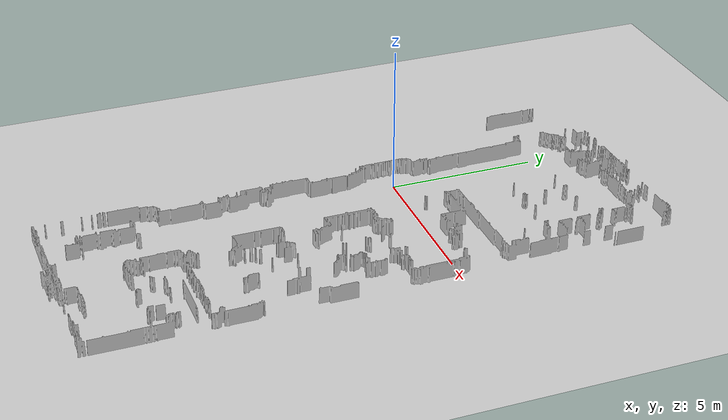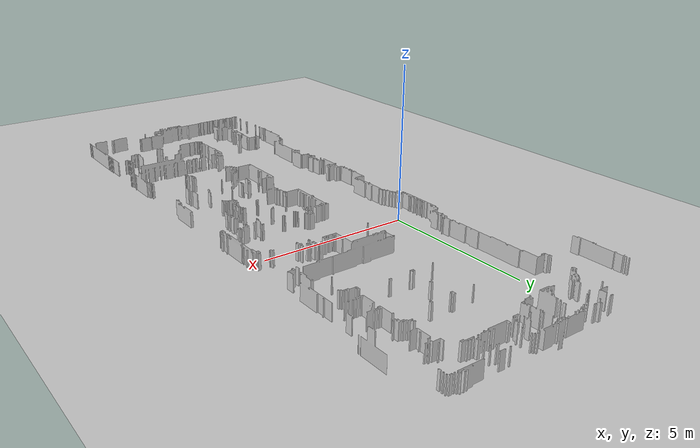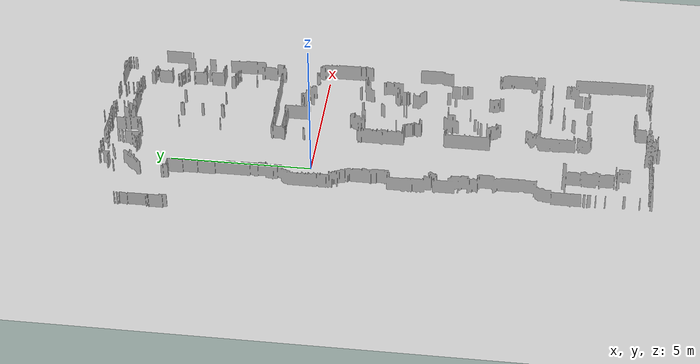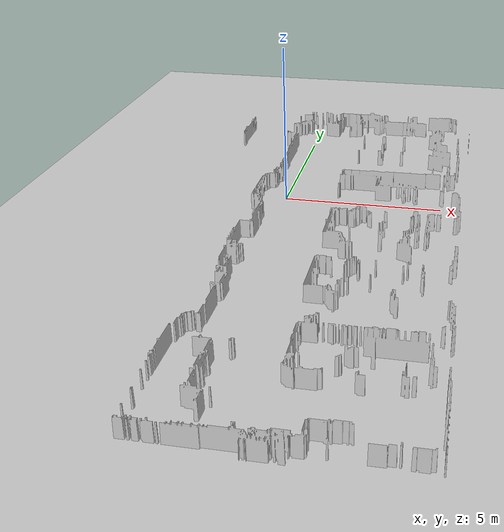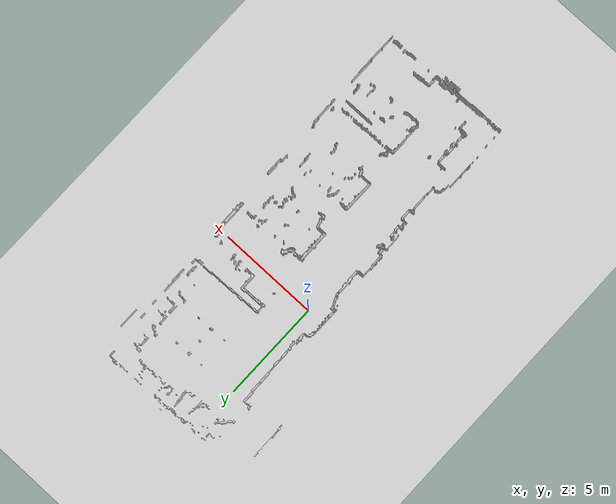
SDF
<?xml version="1.0"?>
<sdf version="1.11">
  <world name="office_v2">

    <physics name="2ms" type="Bullet">
      <max_step_size>0.002</max_step_size>
      <real_time_factor>2.0</real_time_factor>
      <real_time_update_rate>500</real_time_update_rate>
    </physics>

    <!-- Plugins-->
    <plugin filename="gz-sim-physics-system" name="gz::sim::systems::Physics"></plugin>
    <plugin filename="gz-sim-user-commands-system" name="gz::sim::systems::UserCommands"></plugin>
    <plugin filename="gz-sim-scene-broadcaster-system" name="gz::sim::systems::SceneBroadcaster"></plugin>
    <plugin filename="gz-sim-contact-system" name="gz::sim::systems::Contact"></plugin>

    <!-- Sensor Plugins-->
    <plugin filename="gz-sim-imu-system" name="gz::sim::systems::Imu"></plugin>
    <plugin filename="gz-sim-sensors-system" name="gz::sim::systems::Sensors">
      <render_engine>ogre2</render_engine>
    </plugin>

    <!-- Our office environment, created from office_v2.pgm -->
    <include>
      <uri>model://office_v2</uri>
      <pose>1.5 -2.2 0 0 0 0</pose>
    </include>

    <model name="ground_plane">
      <static>true</static>
        <link name="link">
            <collision name="collision">
                <geometry>
                    <plane>
                        <normal>0 0 1</normal>
                    </plane>
                </geometry>
            </collision>
            <visual name="visual">
                <geometry>
                    <plane>
                        <normal>0 0 1</normal>
                        <size>8 20</size>
                    </plane>
                </geometry>
                <material>
                    <ambient>0.8 0.8 0.8 1</ambient>
                    <diffuse>0.8 0.8 0.8 1</diffuse>
                    <specular>0.8 0.8 0.8 1</specular>
                </material>
            </visual>
        </link>
    </model>

    <!-- Lighting -->
    <light type="directional" name="sun">
      <cast_shadows>true</cast_shadows>
      <pose>0 0 10 0 0 0</pose>
      <diffuse>0.8 0.8 0.8 1</diffuse>
      <specular>0.2 0.2 0.2 1</specular>
      <attenuation>
          <range>1000</range>
          <constant>0.9</constant>
          <linear>0.01</linear>
          <quadratic>0.001</quadratic>
      </attenuation>
      <direction>-0.5 0.1 -0.9</direction>
    </light>
  </world>
</sdf>

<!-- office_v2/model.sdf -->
<sdf version="1.9">
  <model name="office_v2">
    <link name="link">

      <collision name="collision">
        <geometry>
          <mesh>
            <uri>meshes/office_v2.stl</uri>
            <scale>1 1 0.25</scale>
          </mesh>
        </geometry>
        <surface>
          <friction>
            <ode>
              <mu>0.5</mu>
              <mu2>0.5</mu2>
              <fdir1>0 0 0</fdir1>
              <slip1>0</slip1>
              <slip2>0</slip2>
            </ode>
          </friction>
        </surface>
      </collision>

      <visual name="visual">
        <geometry>
          <mesh>
            <uri>meshes/office_v2.stl</uri>
            <scale>1 1 0.5</scale>
          </mesh>
        </geometry>

        <material>
          <ambient>0.8 0.8 0.8 1.0</ambient>
          <diffuse>0.8 0.8 0.8 1.0</diffuse>
          <specular>0.1 0.1 0.1 1.0</specular>
        </material>
        <meta> <layer> 2 </layer></meta>
      </visual>
    </link>
    <static>1</static>
  </model>
</sdf>
